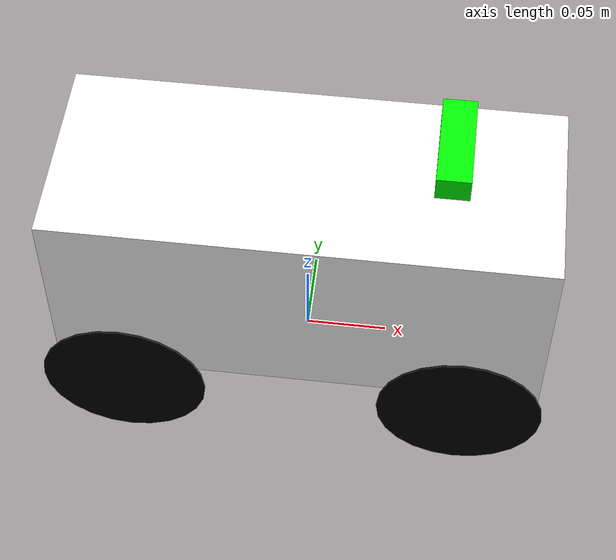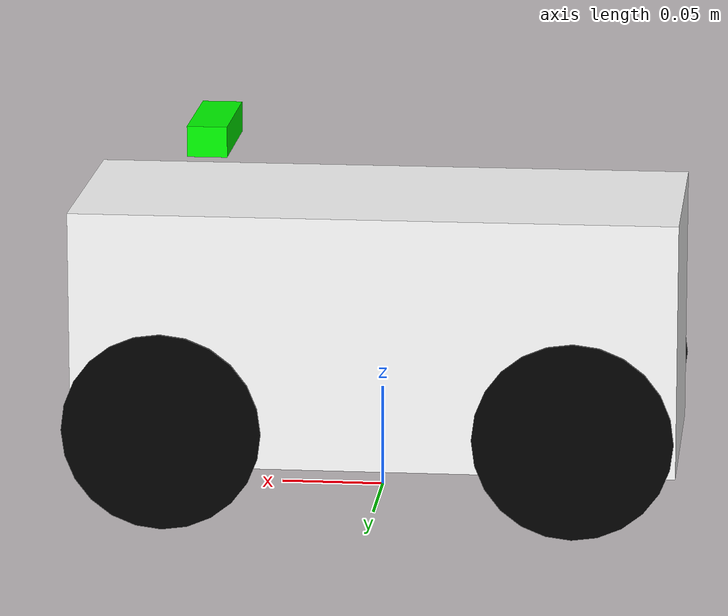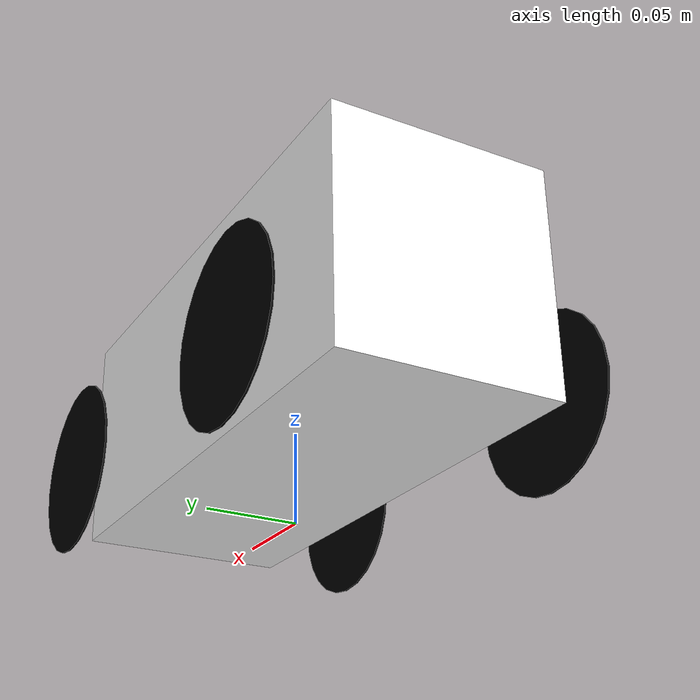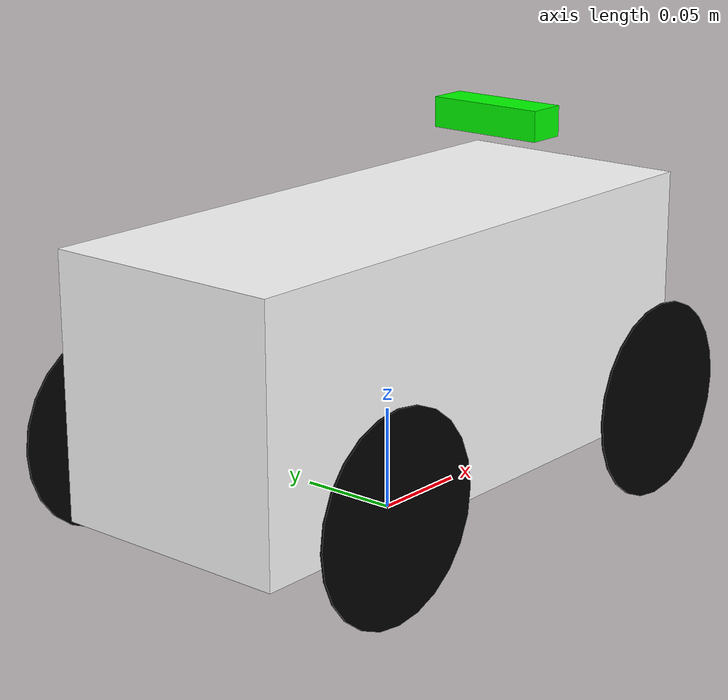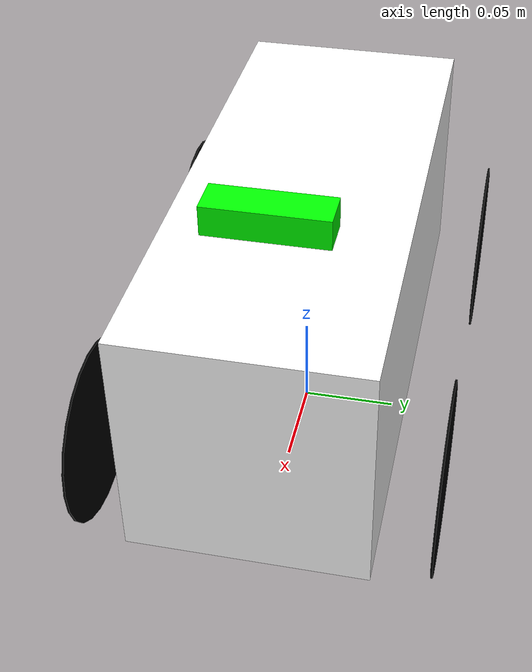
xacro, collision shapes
<?xml version="1.0"?>

<robot name="limo" xmlns:xacro="http://wiki.ros.org/xacro">
    <xacro:arg name="prefix" default=""/>
    <xacro:arg name="namespace" default=""/>
    <xacro:arg name="simulation" default="false"/>
    <xacro:arg name="control_path" default="$(find limo_bringup)/config/simulation_control.yaml"/>

    <xacro:include filename="$(find limo_bringup)/description/ros2_control/simulation_control.xacro" />
    <xacro:include filename="$(find limo_bringup)/description/ros2_control/hardware_control.xacro" />

    <xacro:include filename="$(find limo_bringup)/description/urdf/limo_base.xacro" />
    <xacro:include filename="$(find limo_bringup)/description/urdf/limo_wheel.xacro" />
    <xacro:include filename="$(find limo_bringup)/description/urdf/imu.xacro" />
    <xacro:include filename="$(find limo_bringup)/description/urdf/ydlidar.xacro" />
    <xacro:include filename="$(find limo_bringup)/description/urdf/dabai.xacro" />

    <xacro:property name="prefix" value="$(arg prefix)"/>
    <xacro:property name="namespace" value="$(arg namespace)"/>
    <xacro:property name="simulation" value="$(arg simulation)"/>
    <xacro:property name="control_path" value="$(arg control_path)"/>

    <xacro:property name="wheel_base" value="0.1974"/>
    <xacro:property name="wheel_track" value="0.176"/>
    <xacro:property name="wheel_radius" value="0.0482" />
    <xacro:property name="base_clearance" value="-0.0" />
    <xacro:property name="M_PI" value="3.1415926536"/>

    <link
        name="${namespace}/base_footprint"/>

    <xacro:limo_base
        object_name="base"
        frame_link="${namespace}/base_link"
        parent_link="${namespace}/base_footprint"
        xyz="0 0 ${wheel_radius}"
        rpy="0 0 0"
        color="false"/>

    <xacro:limo_wheel
        object_name="wheel_front_left"
        joint_name="wheel_front_left_joint"
        frame_link="${namespace}/wheel_front_left_link"
        parent_link="${namespace}/base_link"
        xyz="${wheel_base/2} ${wheel_track/2} ${base_clearance}"
        rpy="0 0 0"
        direction="1"
        color="false"/>

    <xacro:limo_wheel
        object_name="wheel_front_right"
        joint_name="wheel_front_right_joint"
        frame_link="${namespace}/wheel_front_right_link"
        parent_link="${namespace}/base_link"
        xyz="${wheel_base/2} ${-wheel_track/2} ${base_clearance}"
        rpy="0 0 0"
        direction="1"
        color="false"/>

    <xacro:limo_wheel
        object_name="wheel_rear_left"
        joint_name="wheel_rear_left_joint"
        frame_link="${namespace}/wheel_rear_left_link"
        parent_link="${namespace}/base_link"
        xyz="${-wheel_base/2} ${wheel_track/2} ${base_clearance}"
        rpy="0 0 0"
        direction="1"
        color="false"/>

    <xacro:limo_wheel
        object_name="wheel_rear_right"
        joint_name="wheel_rear_right_joint"
        frame_link="${namespace}/wheel_rear_right_link"
        parent_link="${namespace}/base_link"
        xyz="${-wheel_base/2} ${-wheel_track/2} ${base_clearance}"
        rpy="0 0 0"
        direction="1"
        color="false"/>

    <xacro:imu
        object_name="imu"
        topic="${namespace}/imu/data"
        frame_link="${namespace}/imu_link"
        parent_link="${namespace}/base_link"
        xyz="0 0 0"
        rpy="0 0 0"/>

    <xacro:ydlidar
        object_name="lidar"
        topic="${namespace}/scan/data"
        frame_link="${namespace}/lidar_link"
        parent_link="${namespace}/base_link"
        xyz="0.1016 0 0.066"
        rpy="0 0 0"/>

    <xacro:dabai
        object_name="dabai"
        topic="${namespace}/camera"
        camera_link="${namespace}/camera_link"
        image_link="${namespace}/image_link"
        point_link="${namespace}/point_link"
        parent_link="${namespace}/base_link"
        xyz="0.0826 0 0.13"
        rpy="${0*M_PI/180} ${0*M_PI/180} ${0*M_PI/180}"/>

    <xacro:if value="${simulation}">
        <xacro:simulation_control
            namespace="${namespace}"
            control_path="${control_path}"/>
    </xacro:if>
    <xacro:unless value="${simulation}">
        <xacro:hardware_control
            namespace="${namespace}"/>
    </xacro:unless>

</robot>

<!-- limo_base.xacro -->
<robot name="limo_base" xmlns:xacro="http://wiki.ros.org/xacro">
    <xacro:macro name="limo_base" params="object_name:='limo_base' frame_link='base_link' parent_link:='base_footprint' xyz:='0 0 0' rpy:='0 0 0' color:='false' simple:='true'">
        <xacro:property
            name="mass"
            value="2.1557"/>
        <xacro:property
            name="base_length"
            value="0.2938"/>
        <xacro:property
            name="base_width"
            value="0.12"/>
        <xacro:property
            name="base_height"
            value="0.125"/>
        <xacro:property
            name="M_PI"
            value="3.1415926536"/>

        <link
            name="${frame_link}">
            <inertial>
                <origin
                    xyz="-0.0014 0 -0.05"
                    rpy="0 0 1.57"/>
                <mass
                    value="${mass}"/>
                <inertia
                    ixx="${mass * (base_width * base_width + base_height * base_height) / 12.0}"
                    ixy="0.0"
                    ixz="0.0"
                    iyy="${mass * (base_length * base_length + base_height * base_height) / 12.0}"
                    iyz="0.0"
                    izz="${mass * (base_length * base_length + base_width * base_width) / 12.0}"/>
            </inertial>
            <visual
                name="${object_name}_visual">
                <origin
                    xyz="-0.0014 0 -0.05"
                    rpy="0 0 1.57"/>
                <geometry>
                    <xacro:if value="${color}">
                        <mesh
                            filename="file://$(find limo_bringup)/description/meshes/limo_base.dae"
                            scale="1 1 1"/>
                    </xacro:if>
                    <xacro:unless value="${color}">
                        <mesh
                            filename="file://$(find limo_bringup)/description/meshes/limo_base.stl"
                            scale="0.001 0.001 0.001"/>
                    </xacro:unless>
                </geometry>
                <material
                    name="${object_name}_material">
                    <color
                        rgba="1 1 1 1"/>
                    <texture
                        filename=""/>
                </material>
            </visual>
            <collision
                name="${object_name}_collision">
                <xacro:if value="${simple}">
                    <origin
                        xyz="0 0 ${base_height/2 - 0.025}"
                        rpy="0 0 0"/>
                    <geometry>
                        <box
                            size="${base_length} ${base_width} ${base_height}"/>
                    </geometry>
                </xacro:if>
                <xacro:unless value="${simple}">
                    <origin
                        xyz="-0.0014 0 -0.05"
                        rpy="0 0 1.57"/>
                    <geometry>
                        <xacro:if value="${color}">
                            <mesh
                                filename="file://$(find limo_bringup)/meshes/limo_base.dae"
                                scale="1 1 1"/>
                        </xacro:if>
                        <xacro:unless value="${color}">
                            <mesh
                                filename="file://$(find limo_bringup)/meshes/base_link.stl"
                                scale="0.001 0.001 0.001"/>
                        </xacro:unless>
                    </geometry>
                </xacro:unless>
            </collision>
        </link>

        <joint
            name="${object_name}_joint"
            type="fixed">
            <origin
                xyz="${xyz}"
                rpy="${rpy}"/>
            <parent
                link="${parent_link}"/>
            <child
                link="${frame_link}"/>
        </joint>

        <gazebo reference="${frame_link}">
            <!-- Link-level setting -->
            <gravity>true</gravity>

            <!-- Inserted into the link collision -->
            <collision>
                <surface>
                    <friction>
                        <ode>
                            <mu>0.8</mu>
                            <mu2>0.8</mu2>
                        </ode>
                    </friction>

                    <contact>
                        <ode>
                            <kp>1000000.0</kp>
                            <kd>1.0</kd>
                            <max_vel>0.0</max_vel>
                            <min_depth>0.001</min_depth>
                        </ode>
                    </contact>
                </surface>
            </collision>
        </gazebo>

    </xacro:macro>
</robot>

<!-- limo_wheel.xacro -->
<robot name="limo_wheel" xmlns:xacro="http://wiki.ros.org/xacro">

    <xacro:macro name="limo_wheel" params="object_name:='limo_wheel' joint_name='limo_wheel_joint' frame_link='limo_wheel_link' parent_link:='base_link' xyz:='0 0 0' rpy:='0 0 0' direction:='1' color:='false' simple:='true'">
        <xacro:property
            name="mass"
            value="0.5"/>
        <xacro:property
            name="wheel_height"
            value="0.045" />
        <xacro:property
            name="wheel_radius"
            value="0.0482" />
        <xacro:property
            name="M_PI"
            value="3.1415926536"/>

        <link
            name="${frame_link}">
            <inertial>
                <origin
                    xyz="0 0 0"
                    rpy="0 0 0"/>
                <mass
                    value="${mass}"/>
                <inertia
                    ixx="${(3 * wheel_radius * wheel_radius + wheel_height * wheel_height) / 12.0}"
                    iyy="${(3 * wheel_radius * wheel_radius + wheel_height * wheel_height) / 12.0}"
                    izz="${wheel_radius * wheel_radius / 2.0}"
                    ixy="0.0"
                    ixz="0.0"
                    iyz="0.0"/>
            </inertial>
            <visual>
                <origin
                    xyz="0 ${-wheel_height/2 + 0.001} 0"
                    rpy="0 0 0"/>
                <geometry>
                    <xacro:if value="${color}">
                        <mesh
                            filename="file://$(find limo_bringup)/description/meshes/limo_wheel.dae"
                            scale="1 1 1"/>
                    </xacro:if>
                    <xacro:unless value="${color}">
                        <mesh
                            filename="file://$(find limo_bringup)/description/meshes/limo_wheel.stl"
                            scale="0.001 0.001 0.001"/>
                    </xacro:unless>
                </geometry>
                <material
                    name="${object_name}_material">
                    <color
                        rgba="0 0 0 1"/>
                    <texture
                        filename=""/>
                </material>
            </visual>
            <collision>
                <xacro:if value="${simple}">
                    <origin
                        xyz="0 0 0"
                        rpy="${M_PI/2} 0 0"/>
                    <geometry>
                        <cylinder
                            radius="${wheel_radius}"
                            length="0.001"/>
                    </geometry>
                </xacro:if>
                <xacro:unless value="${simple}">
                    <origin
                        xyz="0 ${-wheel_height/2 + 0.001} 0"
                        rpy="0 0 0"/>
                    <geometry>
                        <xacro:if value="${color}">
                            <mesh
                                filename="file://$(find limo_bringup)/description/meshes/limo_wheel.dae"
                                scale="1 1 1"/>
                        </xacro:if>
                        <xacro:unless value="${color}">
                            <mesh
                                filename="file://$(find limo_bringup)/description/meshes/limo_wheel.stl"
                                scale="0.001 0.001 0.001"/>
                        </xacro:unless>
                    </geometry>
                </xacro:unless>
            </collision>
        </link>

        <joint
            name="${joint_name}"
            type="continuous">
            <origin
                xyz="${xyz}"
                rpy="${rpy}"/>
            <parent
                link="${parent_link}"/>
            <child
                link="${frame_link}"/>
            <axis
                xyz="0 ${direction} 0"/>
        </joint>

        <!-- this is for ros1 -->

        <gazebo reference="${frame_link}">
            <!-- Link-level setting -->
            <gravity>true</gravity>

            <!-- Applied to every visual in this URDF link -->
            <visual>
                <material>
                    <ambient>0.0 0.0 0.0 1.0</ambient>
                    <diffuse>0.0 0.0 0.0 1.0</diffuse>
                    <specular>0.0 0.0 0.0 1.0</specular>
                </material>
            </visual>

            <!-- Applied to every collision in this URDF link -->
            <collision>
                <surface>
                    <friction>
                        <ode>
                            <mu>1.0</mu>
                            <mu2>0.5</mu2>
                            <fdir1>1 0 0</fdir1>
                        </ode>
                    </friction>

                    <contact>
                        <ode>
                            <kp>1000000.0</kp>
                            <kd>1.0</kd>
                        </ode>
                    </contact>
                </surface>
            </collision>
        </gazebo>

    </xacro:macro>
</robot>

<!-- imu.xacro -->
<robot name="imu" xmlns:xacro="http://wiki.ros.org/xacro">
    <xacro:macro name="imu" params="object_name:='imu' topic='imu/data' frame_link='imu_link' parent_link:='base_link' xyz:='0 0 0' rpy:='0 0 0'">
        <xacro:property
            name="mass"
            value="0.01"/>
        <xacro:property
            name="x"
            value="0.03"/>
        <xacro:property
            name="y"
            value="0.02"/>
        <xacro:property
            name="z"
            value="0.01"/>
        <xacro:property
            name="M_PI"
            value="3.1415926536"/>

        <link
            name="${frame_link}">
            <inertial>
                <origin
                    xyz="0 0 0"
                    rpy="0 0 0"/>
                <mass
                    value="${mass}"/>
                <inertia
                    ixx="${mass * (y * y + z * z) / 12.0}"
                    ixy="0.0"
                    ixz="0.0"
                    iyy="${mass * (x * x + z * z) / 12.0}"
                    iyz="0.0"
                    izz="${mass * (x * x + y * y) / 12.0}"/>
            </inertial>
            <visual>
                <origin
                    xyz="0 0 0"
                    rpy="0 0 0"/>
                <geometry>
                    <box
                        size="${x} ${y} ${z}"/>
                </geometry>
                <material
                    name="${object_name}_material">
                    <color
                        rgba="1 0.5 0 1"/>
                    <texture
                        filename=""/>
                </material>
                <material name="black"/>
            </visual>
            <collision>
                <origin
                    xyz="0 0 0"
                    rpy="0 0 0"/>
                <geometry>
                    <box
                        size="${x} ${y} ${z}"/>
                </geometry>
            </collision>
        </link>

        <joint
            name="${object_name}_joint"
            type="fixed">
            <origin
                xyz="${xyz}"
                rpy="${rpy}"/>
            <parent
                link="${parent_link}"/>
            <child
                link="${frame_link}"/>
        </joint>

        <gazebo reference="${frame_link}">
            <gravity>true</gravity>

            <visual>
                <material>
                    <ambient>1.0 0.4 0.0 1.0</ambient>
                    <diffuse>1.0 0.4 0.0 1.0</diffuse>
                    <specular>0.1 0.1 0.1 1.0</specular>
                </material>
            </visual>

            <collision>
                <surface>
                    <friction>
                        <ode>
                            <mu>0.8</mu>
                            <mu2>0.8</mu2>
                        </ode>
                    </friction>

                    <contact>
                        <ode>
                            <kp>1000000.0</kp>
                            <kd>1.0</kd>
                            <max_vel>0.0</max_vel>
                            <min_depth>0.001</min_depth>
                        </ode>
                    </contact>
                </surface>
            </collision>

            <sensor
                name="${object_name}_sensor"
                type="imu">

                <pose>0 0 0 0 0 0</pose>

                <always_on>true</always_on>
                <update_rate>100</update_rate>
                <visualize>false</visualize>

                <topic>${topic}</topic>
                <gz_frame_id>${frame_link}</gz_frame_id>

                <imu>
                    <angular_velocity>
                        <x>
                            <noise type="gaussian">
                                <mean>0.0</mean>
                                <stddev>0.0001</stddev>

                                <bias_mean>0.000</bias_mean>
                                <bias_stddev>0.000</bias_stddev>
                            </noise>
                        </x>

                        <y>
                            <noise type="gaussian">
                                <mean>0.0</mean>
                                <stddev>0.0001</stddev>

                                <bias_mean>0.000</bias_mean>
                                <bias_stddev>0.000</bias_stddev>
                            </noise>
                        </y>

                        <z>
                            <noise type="gaussian">
                                <mean>0.0</mean>
                                <stddev>0.0001</stddev>

                                <bias_mean>0.000</bias_mean>
                                <bias_stddev>0.000</bias_stddev>
                            </noise>
                        </z>
                    </angular_velocity>

                    <linear_acceleration>
                        <x>
                            <noise type="gaussian">
                                <mean>0.0</mean>
                                <stddev>0.0001</stddev>
                            </noise>
                        </x>

                        <y>
                            <noise type="gaussian">
                                <mean>0.0</mean>
                                <stddev>0.0001</stddev>
                            </noise>
                        </y>

                        <z>
                            <noise type="gaussian">
                                <mean>0.0</mean>
                                <stddev>0.0001</stddev>
                            </noise>
                        </z>
                    </linear_acceleration>
                </imu>
            </sensor>
        </gazebo>
    </xacro:macro>
</robot>

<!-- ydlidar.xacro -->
<robot name="ydlidar" xmlns:xacro="http://wiki.ros.org/xacro">
    <xacro:macro name="ydlidar" params="object_name:='ydlidar' topic='scan' frame_link='ydlidar_link' parent_link:='base_link' xyz:='0 0 0' rpy:='0 0 0'">
        <xacro:property
            name="mass"
            value="0.1"/>
        <xacro:property
            name="radius"
            value="0.03"/>
        <xacro:property
            name="height"
            value="0.014"/>
        <xacro:property
            name="M_PI"
            value="3.1415926536"/>

        <link
            name="${frame_link}">
            <inertial>
                <origin
                    xyz="0 0 0"
                    rpy="0 0 0"/>
                <mass
                    value="${mass}"/>
                <inertia
                    ixx="${( 3 * radius * radius + height * height ) / 12.0}"
                    ixy="0.0"
                    ixz="0.0"
                    iyy="${( 3 * radius * radius + height * height ) / 12.0}"
                    iyz="0.0"
                    izz="${radius * radius / 2.0}"/>
            </inertial>
            <visual>
                <origin
                    xyz="0 0 0"
                    rpy="0 0 0"/>
                <geometry>
                    <cylinder
                        radius="${radius}"
                        length="${height}"/>
                </geometry>
                <material
                    name="${object_name}_material">
                    <color
                        rgba="0 0 1 1"/>
                    <texture
                        filename=""/>
                </material>
            </visual>
            <collision>
                <origin
                    xyz="0 0 0"
                    rpy="0 0 0"/>
                <geometry>
                    <cylinder
                        radius="${radius}"
                        length="${height}"/>
                </geometry>
            </collision>
        </link>

        <joint
            name="${object_name}_joint"
            type="fixed">
            <origin
                xyz="${xyz}"
                rpy="${rpy}"/>
            <parent
                link="${parent_link}"/>
            <child
                link="${frame_link}"/>
        </joint>

        <gazebo reference="${frame_link}">
            <sensor name="${object_name}_sensor" type="gpu_lidar">
                <pose>0 0 0 0 0 0</pose>

                <always_on>true</always_on>
                <visualize>true</visualize>
                <update_rate>10</update_rate>

                <topic>${topic}</topic>
                <gz_frame_id>${frame_link}</gz_frame_id>

                <lidar>
                    <scan>
                        <horizontal>
                            <samples>461</samples>
                            <resolution>1</resolution>
                            <min_angle>${-M_PI}</min_angle>
                            <max_angle>${M_PI}</max_angle>
                        </horizontal>
                    </scan>

                    <range>
                        <min>0.3</min>
                        <max>15.0</max>
                        <resolution>0.015</resolution>
                    </range>

                    <noise>
                        <type>gaussian</type>
                        <mean>0.0</mean>
                        <stddev>0.01</stddev>
                    </noise>
                </lidar>
            </sensor>
        </gazebo>

    </xacro:macro>
</robot>

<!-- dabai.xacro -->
<robot name="dabai" xmlns:xacro="http://wiki.ros.org/xacro">

    <xacro:macro name="dabai" params="object_name:='dabai' topic='dabai' camera_link='camera_link'  image_link='image_link' point_link='point_link' parent_link:='link' xyz:='0 0 0' rpy:='0 0 0'">

        <xacro:property
            name="mass"
            value="0.1"/>
        <xacro:property
            name="length"
            value="0.0195"/>
        <xacro:property
            name="width"
            value="0.06"/>
        <xacro:property
            name="height"
            value="0.015"/>
        <xacro:property
            name="M_PI"
            value="3.1415926536"/>

        <link
            name="${camera_link}">
            <inertial>
                <origin
                    xyz="0 0 0"
                    rpy="${0*M_PI/180} ${0*M_PI/180} ${0*M_PI/180}"/>
                <mass
                    value="${mass}"/>
                <inertia
                    ixx="${(width * width + height * height) / 12.0}"
                    ixy="0.0"
                    ixz="0.0"
                    iyy="${(length * length + height * height) / 12.0}"
                    iyz="0.0"
                    izz="${(length * length + width * width) / 12.0}"/>
            </inertial>
            <visual>
                <origin
                    xyz="0 0 0"
                    rpy="${0*M_PI/180} ${0*M_PI/180} ${0*M_PI/180}"/>
                <geometry>
                    <box
                        size="${length} ${width} ${height}"/>
                </geometry>
                <material
                    name="${object_name}_material">
                    <color
                        rgba="0 1 0 1"/>
                    <texture
                        filename=""/>
                </material>
            </visual>
            <collision>
                <origin
                    xyz="0 0 0"
                    rpy="${0*M_PI/180} ${0*M_PI/180} ${0*M_PI/180}"/>
                <geometry>
                    <box
                        size="${length} ${width} ${height}"/>
                </geometry>
            </collision>
        </link>

        <link
            name="${image_link}"/>

        <link
            name="${point_link}"/>

        <joint
            name="${object_name}_camera_joint"
            type="fixed">
            <origin
                xyz="${xyz}"
                rpy="${rpy}"/>
            <parent
                link="${parent_link}"/>
            <child
                link="${camera_link}"/>
        </joint>

        <joint
            name="${object_name}_image_joint"
            type="fixed">
            <origin
                xyz="0 0.01 0"
                rpy="${-90*M_PI/180} 0 ${-90*M_PI/180}"/>
            <parent
                link="${camera_link}"/>
            <child
                link="${image_link}"/>
        </joint>

        <joint
            name="${object_name}_point_joint"
            type="fixed">
            <origin
                xyz="0 0.0 0"
                rpy="0 0 0"/>
            <parent
                link="${camera_link}"/>
            <child
                link="${point_link}"/>
        </joint>

        <xacro:if value="true">
            <gazebo reference="${camera_link}">
                <sensor
                    name="${object_name}_sensor"
                    type="rgbd_camera">

                    <!-- Sensor pose relative to image_link -->
                    <pose>0 0 0 0 0 0</pose>

                    <always_on>true</always_on>
                    <update_rate>5</update_rate>
                    <visualize>true</visualize>

                    <topic>${topic}</topic>

                    <!-- Gazebo rendering sensor frame: +Z forward -->
                    <gz_frame_id>${point_link}</gz_frame_id>

                    <camera name="${object_name}_camera">
                        <horizontal_fov>
                            ${60.0 * M_PI / 180.0}
                        </horizontal_fov>

                        <image>
                            <width>640</width>
                            <height>480</height>
                            <format>R8G8B8</format>
                        </image>

                        <!-- RGB rendering range -->
                        <clip>
                            <near>0.1</near>
                            <far>8.0</far>
                        </clip>

                        <!-- Depth and point-cloud range -->
                        <depth_camera>
                            <clip>
                                <near>0.2</near>
                                <far>8.0</far>
                            </clip>
                        </depth_camera>

                        <!-- ROS optical convention -->
                        <optical_frame_id>
                            ${camera_link}
                        </optical_frame_id>
                    </camera>
                </sensor>
            </gazebo>
        </xacro:if>
    </xacro:macro>
</robot>
